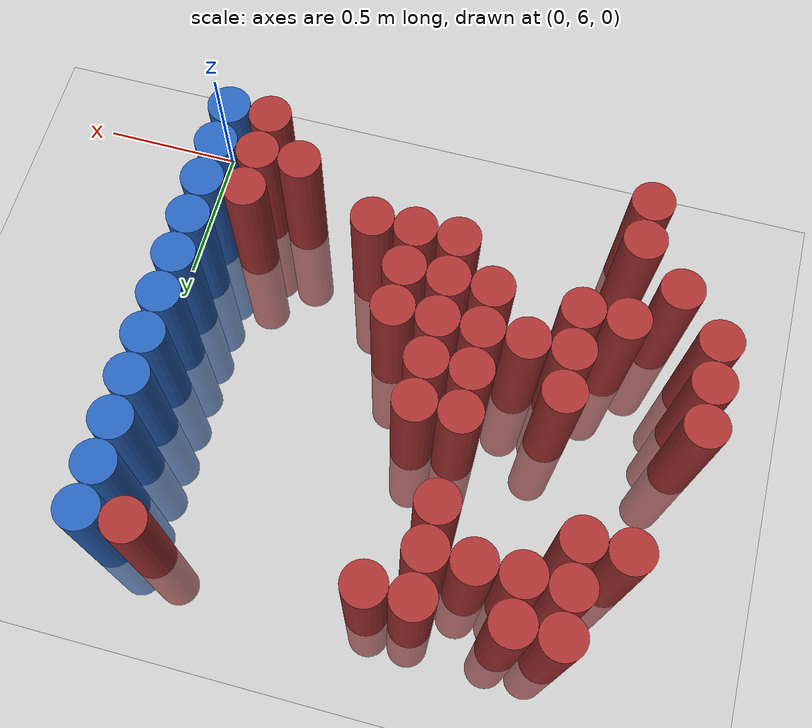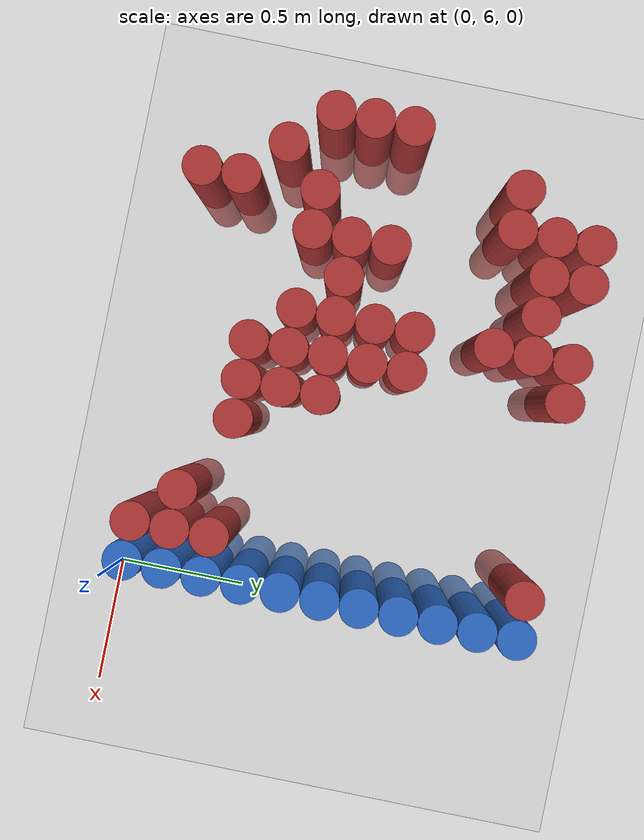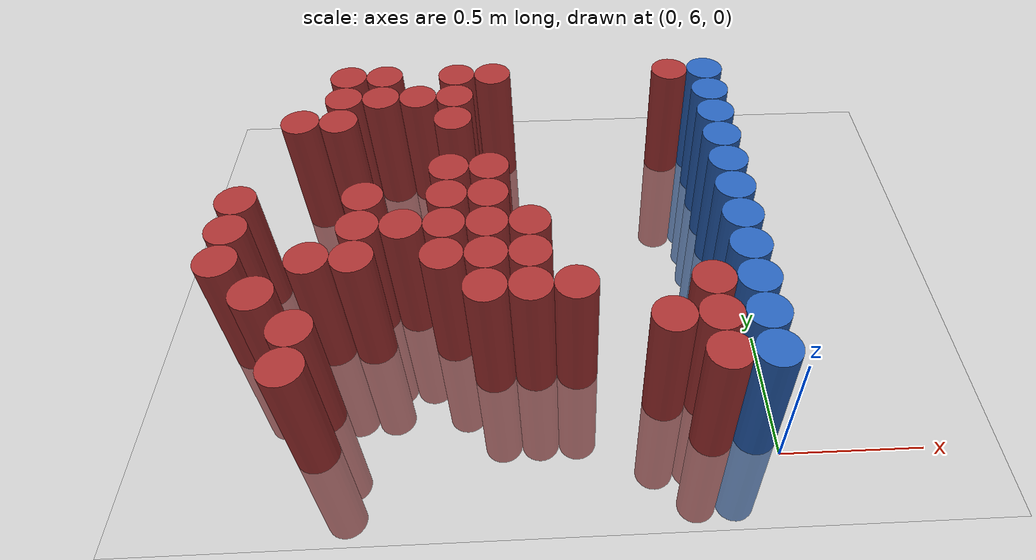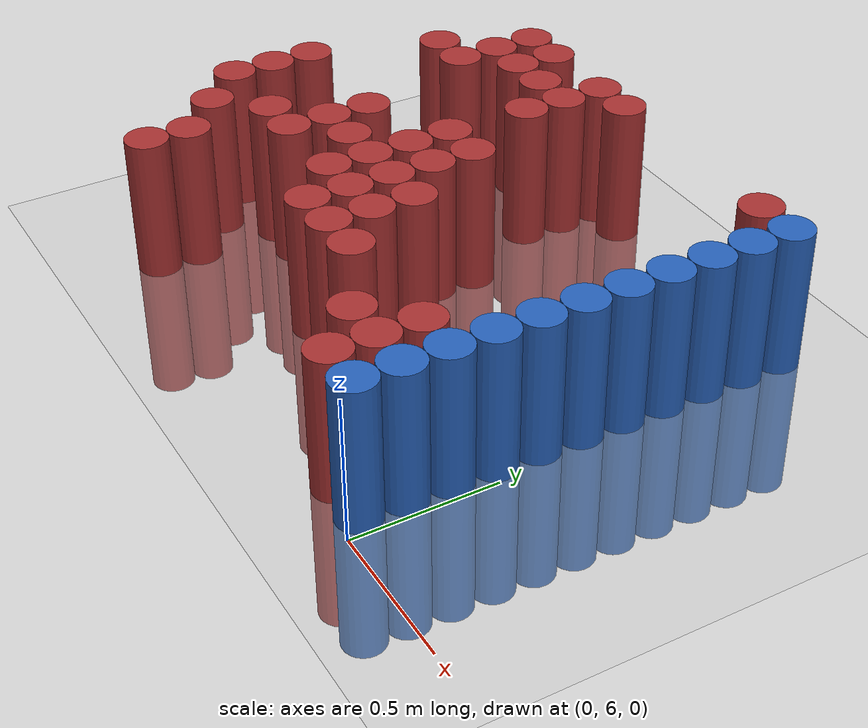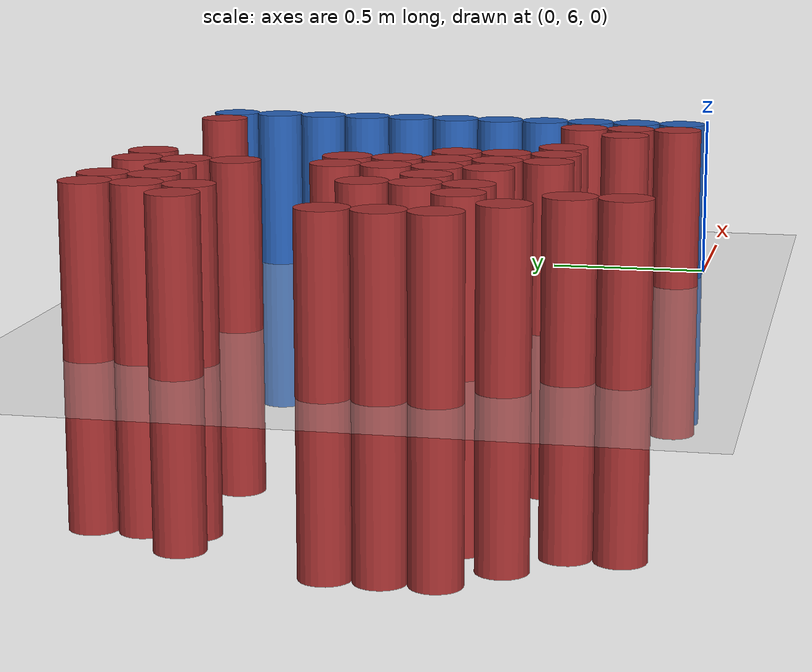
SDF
<sdf version="1.6">
 <world name="default">
  <model name="ground_plane">
   <static>1</static>
   <link name="link">
    <collision name="collision">
     <geometry><plane><normal>0 0 1</normal><size>100 100</size></plane></geometry>
     <surface><friction><ode><mu>100</mu><mu2>50</mu2></ode></friction></surface>
    </collision>
    <visual name="visual">
     <cast_shadows>0</cast_shadows>
     <geometry><plane><normal>0 0 1</normal><size>100 100</size></plane></geometry>
     <material>
      <script><uri>file://media/materials/scripts/gazebo.material</uri><name>Gazebo/Grey</name></script>
     </material>
    </visual>
   </link>
  </model>
  <model name="unit_cylinder_220">
   <static>1</static>
   <pose>-1.875000 6.525000 0.000000 0.000000 0.000000 0.000000</pose>
   <link name="link">
    <inertial>
     <mass>1</mass>
     <inertia><ixx>0.145833</ixx><ixy>0</ixy><ixz>0</ixz><iyy>0.145833</iyy><iyz>0</iyz><izz>0.125</izz></inertia>
    </inertial>
    <collision name="collision">
     <geometry><cylinder><radius>0.075000</radius><length>1</length></cylinder></geometry>
    </collision>
    <visual name="visual">
     <geometry><cylinder><radius>0.075000</radius><length>1</length></cylinder></geometry>
     <material>
      <ambient>0.648000 0.192000 0.192000 1</ambient>
      <diffuse>0.648000 0.192000 0.192000 1</diffuse>
     </material>
     <material>
      <script><name>Gazebo/Grey</name><uri>file://media/materials/scripts/gazebo.material</uri></script>
     </material>
    </visual>
   </link>
  </model>
  <model name="unit_cylinder_221">
   <static>1</static>
   <pose>-1.875000 6.675000 0.000000 0.000000 0.000000 0.000000</pose>
   <link name="link">
    <inertial>
     <mass>1</mass>
     <inertia><ixx>0.145833</ixx><ixy>0</ixy><ixz>0</ixz><iyy>0.145833</iyy><iyz>0</iyz><izz>0.125</izz></inertia>
    </inertial>
    <collision name="collision">
     <geometry><cylinder><radius>0.075000</radius><length>1</length></cylinder></geometry>
    </collision>
    <visual name="visual">
     <geometry><cylinder><radius>0.075000</radius><length>1</length></cylinder></geometry>
     <material>
      <ambient>0.648000 0.192000 0.192000 1</ambient>
      <diffuse>0.648000 0.192000 0.192000 1</diffuse>
     </material>
     <material>
      <script><name>Gazebo/Grey</name><uri>file://media/materials/scripts/gazebo.material</uri></script>
     </material>
    </visual>
   </link>
  </model>
  <model name="unit_cylinder_222">
   <static>1</static>
   <pose>-1.875000 6.825000 0.000000 0.000000 0.000000 0.000000</pose>
   <link name="link">
    <inertial>
     <mass>1</mass>
     <inertia><ixx>0.145833</ixx><ixy>0</ixy><ixz>0</ixz><iyy>0.145833</iyy><iyz>0</iyz><izz>0.125</izz></inertia>
    </inertial>
    <collision name="collision">
     <geometry><cylinder><radius>0.075000</radius><length>1</length></cylinder></geometry>
    </collision>
    <visual name="visual">
     <geometry><cylinder><radius>0.075000</radius><length>1</length></cylinder></geometry>
     <material>
      <ambient>0.648000 0.192000 0.192000 1</ambient>
      <diffuse>0.648000 0.192000 0.192000 1</diffuse>
     </material>
     <material>
      <script><name>Gazebo/Grey</name><uri>file://media/materials/scripts/gazebo.material</uri></script>
     </material>
    </visual>
   </link>
  </model>
  <model name="unit_cylinder_228">
   <static>1</static>
   <pose>-1.725000 6.375000 0.000000 0.000000 0.000000 0.000000</pose>
   <link name="link">
    <inertial>
     <mass>1</mass>
     <inertia><ixx>0.145833</ixx><ixy>0</ixy><ixz>0</ixz><iyy>0.145833</iyy><iyz>0</iyz><izz>0.125</izz></inertia>
    </inertial>
    <collision name="collision">
     <geometry><cylinder><radius>0.075000</radius><length>1</length></cylinder></geometry>
    </collision>
    <visual name="visual">
     <geometry><cylinder><radius>0.075000</radius><length>1</length></cylinder></geometry>
     <material>
      <ambient>0.648000 0.192000 0.192000 1</ambient>
      <diffuse>0.648000 0.192000 0.192000 1</diffuse>
     </material>
     <material>
      <script><name>Gazebo/Grey</name><uri>file://media/materials/scripts/gazebo.material</uri></script>
     </material>
    </visual>
   </link>
  </model>
  <model name="unit_cylinder_229">
   <static>1</static>
   <pose>-1.725000 7.275000 0.000000 0.000000 0.000000 0.000000</pose>
   <link name="link">
    <inertial>
     <mass>1</mass>
     <inertia><ixx>0.145833</ixx><ixy>0</ixy><ixz>0</ixz><iyy>0.145833</iyy><iyz>0</iyz><izz>0.125</izz></inertia>
    </inertial>
    <collision name="collision">
     <geometry><cylinder><radius>0.075000</radius><length>1</length></cylinder></geometry>
    </collision>
    <visual name="visual">
     <geometry><cylinder><radius>0.075000</radius><length>1</length></cylinder></geometry>
     <material>
      <ambient>0.648000 0.192000 0.192000 1</ambient>
      <diffuse>0.648000 0.192000 0.192000 1</diffuse>
     </material>
     <material>
      <script><name>Gazebo/Grey</name><uri>file://media/materials/scripts/gazebo.material</uri></script>
     </material>
    </visual>
   </link>
  </model>
  <model name="unit_cylinder_234">
   <static>1</static>
   <pose>-1.575000 6.075000 0.000000 0.000000 0.000000 0.000000</pose>
   <link name="link">
    <inertial>
     <mass>1</mass>
     <inertia><ixx>0.145833</ixx><ixy>0</ixy><ixz>0</ixz><iyy>0.145833</iyy><iyz>0</iyz><izz>0.125</izz></inertia>
    </inertial>
    <collision name="collision">
     <geometry><cylinder><radius>0.075000</radius><length>1</length></cylinder></geometry>
    </collision>
    <visual name="visual">
     <geometry><cylinder><radius>0.075000</radius><length>1</length></cylinder></geometry>
     <material>
      <ambient>0.648000 0.192000 0.192000 1</ambient>
      <diffuse>0.648000 0.192000 0.192000 1</diffuse>
     </material>
     <material>
      <script><name>Gazebo/Grey</name><uri>file://media/materials/scripts/gazebo.material</uri></script>
     </material>
    </visual>
   </link>
  </model>
  <model name="unit_cylinder_235">
   <static>1</static>
   <pose>-1.575000 6.225000 0.000000 0.000000 0.000000 0.000000</pose>
   <link name="link">
    <inertial>
     <mass>1</mass>
     <inertia><ixx>0.145833</ixx><ixy>0</ixy><ixz>0</ixz><iyy>0.145833</iyy><iyz>0</iyz><izz>0.125</izz></inertia>
    </inertial>
    <collision name="collision">
     <geometry><cylinder><radius>0.075000</radius><length>1</length></cylinder></geometry>
    </collision>
    <visual name="visual">
     <geometry><cylinder><radius>0.075000</radius><length>1</length></cylinder></geometry>
     <material>
      <ambient>0.648000 0.192000 0.192000 1</ambient>
      <diffuse>0.648000 0.192000 0.192000 1</diffuse>
     </material>
     <material>
      <script><name>Gazebo/Grey</name><uri>file://media/materials/scripts/gazebo.material</uri></script>
     </material>
    </visual>
   </link>
  </model>
  <model name="unit_cylinder_236">
   <static>1</static>
   <pose>-1.575000 6.525000 0.000000 0.000000 0.000000 0.000000</pose>
   <link name="link">
    <inertial>
     <mass>1</mass>
     <inertia><ixx>0.145833</ixx><ixy>0</ixy><ixz>0</ixz><iyy>0.145833</iyy><iyz>0</iyz><izz>0.125</izz></inertia>
    </inertial>
    <collision name="collision">
     <geometry><cylinder><radius>0.075000</radius><length>1</length></cylinder></geometry>
    </collision>
    <visual name="visual">
     <geometry><cylinder><radius>0.075000</radius><length>1</length></cylinder></geometry>
     <material>
      <ambient>0.648000 0.192000 0.192000 1</ambient>
      <diffuse>0.648000 0.192000 0.192000 1</diffuse>
     </material>
     <material>
      <script><name>Gazebo/Grey</name><uri>file://media/materials/scripts/gazebo.material</uri></script>
     </material>
    </visual>
   </link>
  </model>
  <model name="unit_cylinder_237">
   <static>1</static>
   <pose>-1.575000 7.275000 0.000000 0.000000 0.000000 0.000000</pose>
   <link name="link">
    <inertial>
     <mass>1</mass>
     <inertia><ixx>0.145833</ixx><ixy>0</ixy><ixz>0</ixz><iyy>0.145833</iyy><iyz>0</iyz><izz>0.125</izz></inertia>
    </inertial>
    <collision name="collision">
     <geometry><cylinder><radius>0.075000</radius><length>1</length></cylinder></geometry>
    </collision>
    <visual name="visual">
     <geometry><cylinder><radius>0.075000</radius><length>1</length></cylinder></geometry>
     <material>
      <ambient>0.648000 0.192000 0.192000 1</ambient>
      <diffuse>0.648000 0.192000 0.192000 1</diffuse>
     </material>
     <material>
      <script><name>Gazebo/Grey</name><uri>file://media/materials/scripts/gazebo.material</uri></script>
     </material>
    </visual>
   </link>
  </model>
  <model name="unit_cylinder_238">
   <static>1</static>
   <pose>-1.575000 7.425000 0.000000 0.000000 0.000000 0.000000</pose>
   <link name="link">
    <inertial>
     <mass>1</mass>
     <inertia><ixx>0.145833</ixx><ixy>0</ixy><ixz>0</ixz><iyy>0.145833</iyy><iyz>0</iyz><izz>0.125</izz></inertia>
    </inertial>
    <collision name="collision">
     <geometry><cylinder><radius>0.075000</radius><length>1</length></cylinder></geometry>
    </collision>
    <visual name="visual">
     <geometry><cylinder><radius>0.075000</radius><length>1</length></cylinder></geometry>
     <material>
      <ambient>0.648000 0.192000 0.192000 1</ambient>
      <diffuse>0.648000 0.192000 0.192000 1</diffuse>
     </material>
     <material>
      <script><name>Gazebo/Grey</name><uri>file://media/materials/scripts/gazebo.material</uri></script>
     </material>
    </visual>
   </link>
  </model>
  <model name="unit_cylinder_239">
   <static>1</static>
   <pose>-1.575000 7.575000 0.000000 0.000000 0.000000 0.000000</pose>
   <link name="link">
    <inertial>
     <mass>1</mass>
     <inertia><ixx>0.145833</ixx><ixy>0</ixy><ixz>0</ixz><iyy>0.145833</iyy><iyz>0</iyz><izz>0.125</izz></inertia>
    </inertial>
    <collision name="collision">
     <geometry><cylinder><radius>0.075000</radius><length>1</length></cylinder></geometry>
    </collision>
    <visual name="visual">
     <geometry><cylinder><radius>0.075000</radius><length>1</length></cylinder></geometry>
     <material>
      <ambient>0.648000 0.192000 0.192000 1</ambient>
      <diffuse>0.648000 0.192000 0.192000 1</diffuse>
     </material>
     <material>
      <script><name>Gazebo/Grey</name><uri>file://media/materials/scripts/gazebo.material</uri></script>
     </material>
    </visual>
   </link>
  </model>
  <model name="unit_cylinder_246">
   <static>1</static>
   <pose>-1.425000 6.525000 0.000000 0.000000 0.000000 0.000000</pose>
   <link name="link">
    <inertial>
     <mass>1</mass>
     <inertia><ixx>0.145833</ixx><ixy>0</ixy><ixz>0</ixz><iyy>0.145833</iyy><iyz>0</iyz><izz>0.125</izz></inertia>
    </inertial>
    <collision name="collision">
     <geometry><cylinder><radius>0.075000</radius><length>1</length></cylinder></geometry>
    </collision>
    <visual name="visual">
     <geometry><cylinder><radius>0.075000</radius><length>1</length></cylinder></geometry>
     <material>
      <ambient>0.648000 0.192000 0.192000 1</ambient>
      <diffuse>0.648000 0.192000 0.192000 1</diffuse>
     </material>
     <material>
      <script><name>Gazebo/Grey</name><uri>file://media/materials/scripts/gazebo.material</uri></script>
     </material>
    </visual>
   </link>
  </model>
  <model name="unit_cylinder_247">
   <static>1</static>
   <pose>-1.425000 6.675000 0.000000 0.000000 0.000000 0.000000</pose>
   <link name="link">
    <inertial>
     <mass>1</mass>
     <inertia><ixx>0.145833</ixx><ixy>0</ixy><ixz>0</ixz><iyy>0.145833</iyy><iyz>0</iyz><izz>0.125</izz></inertia>
    </inertial>
    <collision name="collision">
     <geometry><cylinder><radius>0.075000</radius><length>1</length></cylinder></geometry>
    </collision>
    <visual name="visual">
     <geometry><cylinder><radius>0.075000</radius><length>1</length></cylinder></geometry>
     <material>
      <ambient>0.648000 0.192000 0.192000 1</ambient>
      <diffuse>0.648000 0.192000 0.192000 1</diffuse>
     </material>
     <material>
      <script><name>Gazebo/Grey</name><uri>file://media/materials/scripts/gazebo.material</uri></script>
     </material>
    </visual>
   </link>
  </model>
  <model name="unit_cylinder_248">
   <static>1</static>
   <pose>-1.425000 6.825000 0.000000 0.000000 0.000000 0.000000</pose>
   <link name="link">
    <inertial>
     <mass>1</mass>
     <inertia><ixx>0.145833</ixx><ixy>0</ixy><ixz>0</ixz><iyy>0.145833</iyy><iyz>0</iyz><izz>0.125</izz></inertia>
    </inertial>
    <collision name="collision">
     <geometry><cylinder><radius>0.075000</radius><length>1</length></cylinder></geometry>
    </collision>
    <visual name="visual">
     <geometry><cylinder><radius>0.075000</radius><length>1</length></cylinder></geometry>
     <material>
      <ambient>0.648000 0.192000 0.192000 1</ambient>
      <diffuse>0.648000 0.192000 0.192000 1</diffuse>
     </material>
     <material>
      <script><name>Gazebo/Grey</name><uri>file://media/materials/scripts/gazebo.material</uri></script>
     </material>
    </visual>
   </link>
  </model>
  <model name="unit_cylinder_249">
   <static>1</static>
   <pose>-1.425000 7.425000 0.000000 0.000000 0.000000 0.000000</pose>
   <link name="link">
    <inertial>
     <mass>1</mass>
     <inertia><ixx>0.145833</ixx><ixy>0</ixy><ixz>0</ixz><iyy>0.145833</iyy><iyz>0</iyz><izz>0.125</izz></inertia>
    </inertial>
    <collision name="collision">
     <geometry><cylinder><radius>0.075000</radius><length>1</length></cylinder></geometry>
    </collision>
    <visual name="visual">
     <geometry><cylinder><radius>0.075000</radius><length>1</length></cylinder></geometry>
     <material>
      <ambient>0.648000 0.192000 0.192000 1</ambient>
      <diffuse>0.648000 0.192000 0.192000 1</diffuse>
     </material>
     <material>
      <script><name>Gazebo/Grey</name><uri>file://media/materials/scripts/gazebo.material</uri></script>
     </material>
    </visual>
   </link>
  </model>
  <model name="unit_cylinder_250">
   <static>1</static>
   <pose>-1.425000 7.575000 0.000000 0.000000 0.000000 0.000000</pose>
   <link name="link">
    <inertial>
     <mass>1</mass>
     <inertia><ixx>0.145833</ixx><ixy>0</ixy><ixz>0</ixz><iyy>0.145833</iyy><iyz>0</iyz><izz>0.125</izz></inertia>
    </inertial>
    <collision name="collision">
     <geometry><cylinder><radius>0.075000</radius><length>1</length></cylinder></geometry>
    </collision>
    <visual name="visual">
     <geometry><cylinder><radius>0.075000</radius><length>1</length></cylinder></geometry>
     <material>
      <ambient>0.648000 0.192000 0.192000 1</ambient>
      <diffuse>0.648000 0.192000 0.192000 1</diffuse>
     </material>
     <material>
      <script><name>Gazebo/Grey</name><uri>file://media/materials/scripts/gazebo.material</uri></script>
     </material>
    </visual>
   </link>
  </model>
  <model name="unit_cylinder_259">
   <static>1</static>
   <pose>-1.275000 6.675000 0.000000 0.000000 0.000000 0.000000</pose>
   <link name="link">
    <inertial>
     <mass>1</mass>
     <inertia><ixx>0.145833</ixx><ixy>0</ixy><ixz>0</ixz><iyy>0.145833</iyy><iyz>0</iyz><izz>0.125</izz></inertia>
    </inertial>
    <collision name="collision">
     <geometry><cylinder><radius>0.075000</radius><length>1</length></cylinder></geometry>
    </collision>
    <visual name="visual">
     <geometry><cylinder><radius>0.075000</radius><length>1</length></cylinder></geometry>
     <material>
      <ambient>0.648000 0.192000 0.192000 1</ambient>
      <diffuse>0.648000 0.192000 0.192000 1</diffuse>
     </material>
     <material>
      <script><name>Gazebo/Grey</name><uri>file://media/materials/scripts/gazebo.material</uri></script>
     </material>
    </visual>
   </link>
  </model>
  <model name="unit_cylinder_260">
   <static>1</static>
   <pose>-1.275000 7.425000 0.000000 0.000000 0.000000 0.000000</pose>
   <link name="link">
    <inertial>
     <mass>1</mass>
     <inertia><ixx>0.145833</ixx><ixy>0</ixy><ixz>0</ixz><iyy>0.145833</iyy><iyz>0</iyz><izz>0.125</izz></inertia>
    </inertial>
    <collision name="collision">
     <geometry><cylinder><radius>0.075000</radius><length>1</length></cylinder></geometry>
    </collision>
    <visual name="visual">
     <geometry><cylinder><radius>0.075000</radius><length>1</length></cylinder></geometry>
     <material>
      <ambient>0.648000 0.192000 0.192000 1</ambient>
      <diffuse>0.648000 0.192000 0.192000 1</diffuse>
     </material>
     <material>
      <script><name>Gazebo/Grey</name><uri>file://media/materials/scripts/gazebo.material</uri></script>
     </material>
    </visual>
   </link>
  </model>
  <model name="unit_cylinder_269">
   <static>1</static>
   <pose>-1.125000 6.525000 0.000000 0.000000 0.000000 0.000000</pose>
   <link name="link">
    <inertial>
     <mass>1</mass>
     <inertia><ixx>0.145833</ixx><ixy>0</ixy><ixz>0</ixz><iyy>0.145833</iyy><iyz>0</iyz><izz>0.125</izz></inertia>
    </inertial>
    <collision name="collision">
     <geometry><cylinder><radius>0.075000</radius><length>1</length></cylinder></geometry>
    </collision>
    <visual name="visual">
     <geometry><cylinder><radius>0.075000</radius><length>1</length></cylinder></geometry>
     <material>
      <ambient>0.648000 0.192000 0.192000 1</ambient>
      <diffuse>0.648000 0.192000 0.192000 1</diffuse>
     </material>
     <material>
      <script><name>Gazebo/Grey</name><uri>file://media/materials/scripts/gazebo.material</uri></script>
     </material>
    </visual>
   </link>
  </model>
  <model name="unit_cylinder_270">
   <static>1</static>
   <pose>-1.125000 6.675000 0.000000 0.000000 0.000000 0.000000</pose>
   <link name="link">
    <inertial>
     <mass>1</mass>
     <inertia><ixx>0.145833</ixx><ixy>0</ixy><ixz>0</ixz><iyy>0.145833</iyy><iyz>0</iyz><izz>0.125</izz></inertia>
    </inertial>
    <collision name="collision">
     <geometry><cylinder><radius>0.075000</radius><length>1</length></cylinder></geometry>
    </collision>
    <visual name="visual">
     <geometry><cylinder><radius>0.075000</radius><length>1</length></cylinder></geometry>
     <material>
      <ambient>0.648000 0.192000 0.192000 1</ambient>
      <diffuse>0.648000 0.192000 0.192000 1</diffuse>
     </material>
     <material>
      <script><name>Gazebo/Grey</name><uri>file://media/materials/scripts/gazebo.material</uri></script>
     </material>
    </visual>
   </link>
  </model>
  <model name="unit_cylinder_271">
   <static>1</static>
   <pose>-1.125000 6.825000 0.000000 0.000000 0.000000 0.000000</pose>
   <link name="link">
    <inertial>
     <mass>1</mass>
     <inertia><ixx>0.145833</ixx><ixy>0</ixy><ixz>0</ixz><iyy>0.145833</iyy><iyz>0</iyz><izz>0.125</izz></inertia>
    </inertial>
    <collision name="collision">
     <geometry><cylinder><radius>0.075000</radius><length>1</length></cylinder></geometry>
    </collision>
    <visual name="visual">
     <geometry><cylinder><radius>0.075000</radius><length>1</length></cylinder></geometry>
     <material>
      <ambient>0.648000 0.192000 0.192000 1</ambient>
      <diffuse>0.648000 0.192000 0.192000 1</diffuse>
     </material>
     <material>
      <script><name>Gazebo/Grey</name><uri>file://media/materials/scripts/gazebo.material</uri></script>
     </material>
    </visual>
   </link>
  </model>
  <model name="unit_cylinder_272">
   <static>1</static>
   <pose>-1.125000 6.975000 0.000000 0.000000 0.000000 0.000000</pose>
   <link name="link">
    <inertial>
     <mass>1</mass>
     <inertia><ixx>0.145833</ixx><ixy>0</ixy><ixz>0</ixz><iyy>0.145833</iyy><iyz>0</iyz><izz>0.125</izz></inertia>
    </inertial>
    <collision name="collision">
     <geometry><cylinder><radius>0.075000</radius><length>1</length></cylinder></geometry>
    </collision>
    <visual name="visual">
     <geometry><cylinder><radius>0.075000</radius><length>1</length></cylinder></geometry>
     <material>
      <ambient>0.648000 0.192000 0.192000 1</ambient>
      <diffuse>0.648000 0.192000 0.192000 1</diffuse>
     </material>
     <material>
      <script><name>Gazebo/Grey</name><uri>file://media/materials/scripts/gazebo.material</uri></script>
     </material>
    </visual>
   </link>
  </model>
  <model name="unit_cylinder_273">
   <static>1</static>
   <pose>-1.125000 7.275000 0.000000 0.000000 0.000000 0.000000</pose>
   <link name="link">
    <inertial>
     <mass>1</mass>
     <inertia><ixx>0.145833</ixx><ixy>0</ixy><ixz>0</ixz><iyy>0.145833</iyy><iyz>0</iyz><izz>0.125</izz></inertia>
    </inertial>
    <collision name="collision">
     <geometry><cylinder><radius>0.075000</radius><length>1</length></cylinder></geometry>
    </collision>
    <visual name="visual">
     <geometry><cylinder><radius>0.075000</radius><length>1</length></cylinder></geometry>
     <material>
      <ambient>0.648000 0.192000 0.192000 1</ambient>
      <diffuse>0.648000 0.192000 0.192000 1</diffuse>
     </material>
     <material>
      <script><name>Gazebo/Grey</name><uri>file://media/materials/scripts/gazebo.material</uri></script>
     </material>
    </visual>
   </link>
  </model>
  <model name="unit_cylinder_274">
   <static>1</static>
   <pose>-1.125000 7.425000 0.000000 0.000000 0.000000 0.000000</pose>
   <link name="link">
    <inertial>
     <mass>1</mass>
     <inertia><ixx>0.145833</ixx><ixy>0</ixy><ixz>0</ixz><iyy>0.145833</iyy><iyz>0</iyz><izz>0.125</izz></inertia>
    </inertial>
    <collision name="collision">
     <geometry><cylinder><radius>0.075000</radius><length>1</length></cylinder></geometry>
    </collision>
    <visual name="visual">
     <geometry><cylinder><radius>0.075000</radius><length>1</length></cylinder></geometry>
     <material>
      <ambient>0.648000 0.192000 0.192000 1</ambient>
      <diffuse>0.648000 0.192000 0.192000 1</diffuse>
     </material>
     <material>
      <script><name>Gazebo/Grey</name><uri>file://media/materials/scripts/gazebo.material</uri></script>
     </material>
    </visual>
   </link>
  </model>
  <model name="unit_cylinder_275">
   <static>1</static>
   <pose>-1.125000 7.575000 0.000000 0.000000 0.000000 0.000000</pose>
   <link name="link">
    <inertial>
     <mass>1</mass>
     <inertia><ixx>0.145833</ixx><ixy>0</ixy><ixz>0</ixz><iyy>0.145833</iyy><iyz>0</iyz><izz>0.125</izz></inertia>
    </inertial>
    <collision name="collision">
     <geometry><cylinder><radius>0.075000</radius><length>1</length></cylinder></geometry>
    </collision>
    <visual name="visual">
     <geometry><cylinder><radius>0.075000</radius><length>1</length></cylinder></geometry>
     <material>
      <ambient>0.648000 0.192000 0.192000 1</ambient>
      <diffuse>0.648000 0.192000 0.192000 1</diffuse>
     </material>
     <material>
      <script><name>Gazebo/Grey</name><uri>file://media/materials/scripts/gazebo.material</uri></script>
     </material>
    </visual>
   </link>
  </model>
  <model name="unit_cylinder_281">
   <static>1</static>
   <pose>-0.975000 6.375000 0.000000 0.000000 0.000000 0.000000</pose>
   <link name="link">
    <inertial>
     <mass>1</mass>
     <inertia><ixx>0.145833</ixx><ixy>0</ixy><ixz>0</ixz><iyy>0.145833</iyy><iyz>0</iyz><izz>0.125</izz></inertia>
    </inertial>
    <collision name="collision">
     <geometry><cylinder><radius>0.075000</radius><length>1</length></cylinder></geometry>
    </collision>
    <visual name="visual">
     <geometry><cylinder><radius>0.075000</radius><length>1</length></cylinder></geometry>
     <material>
      <ambient>0.648000 0.192000 0.192000 1</ambient>
      <diffuse>0.648000 0.192000 0.192000 1</diffuse>
     </material>
     <material>
      <script><name>Gazebo/Grey</name><uri>file://media/materials/scripts/gazebo.material</uri></script>
     </material>
    </visual>
   </link>
  </model>
  <model name="unit_cylinder_282">
   <static>1</static>
   <pose>-0.975000 6.525000 0.000000 0.000000 0.000000 0.000000</pose>
   <link name="link">
    <inertial>
     <mass>1</mass>
     <inertia><ixx>0.145833</ixx><ixy>0</ixy><ixz>0</ixz><iyy>0.145833</iyy><iyz>0</iyz><izz>0.125</izz></inertia>
    </inertial>
    <collision name="collision">
     <geometry><cylinder><radius>0.075000</radius><length>1</length></cylinder></geometry>
    </collision>
    <visual name="visual">
     <geometry><cylinder><radius>0.075000</radius><length>1</length></cylinder></geometry>
     <material>
      <ambient>0.648000 0.192000 0.192000 1</ambient>
      <diffuse>0.648000 0.192000 0.192000 1</diffuse>
     </material>
     <material>
      <script><name>Gazebo/Grey</name><uri>file://media/materials/scripts/gazebo.material</uri></script>
     </material>
    </visual>
   </link>
  </model>
  <model name="unit_cylinder_283">
   <static>1</static>
   <pose>-0.975000 6.675000 0.000000 0.000000 0.000000 0.000000</pose>
   <link name="link">
    <inertial>
     <mass>1</mass>
     <inertia><ixx>0.145833</ixx><ixy>0</ixy><ixz>0</ixz><iyy>0.145833</iyy><iyz>0</iyz><izz>0.125</izz></inertia>
    </inertial>
    <collision name="collision">
     <geometry><cylinder><radius>0.075000</radius><length>1</length></cylinder></geometry>
    </collision>
    <visual name="visual">
     <geometry><cylinder><radius>0.075000</radius><length>1</length></cylinder></geometry>
     <material>
      <ambient>0.648000 0.192000 0.192000 1</ambient>
      <diffuse>0.648000 0.192000 0.192000 1</diffuse>
     </material>
     <material>
      <script><name>Gazebo/Grey</name><uri>file://media/materials/scripts/gazebo.material</uri></script>
     </material>
    </visual>
   </link>
  </model>
  <model name="unit_cylinder_284">
   <static>1</static>
   <pose>-0.975000 6.825000 0.000000 0.000000 0.000000 0.000000</pose>
   <link name="link">
    <inertial>
     <mass>1</mass>
     <inertia><ixx>0.145833</ixx><ixy>0</ixy><ixz>0</ixz><iyy>0.145833</iyy><iyz>0</iyz><izz>0.125</izz></inertia>
    </inertial>
    <collision name="collision">
     <geometry><cylinder><radius>0.075000</radius><length>1</length></cylinder></geometry>
    </collision>
    <visual name="visual">
     <geometry><cylinder><radius>0.075000</radius><length>1</length></cylinder></geometry>
     <material>
      <ambient>0.648000 0.192000 0.192000 1</ambient>
      <diffuse>0.648000 0.192000 0.192000 1</diffuse>
     </material>
     <material>
      <script><name>Gazebo/Grey</name><uri>file://media/materials/scripts/gazebo.material</uri></script>
     </material>
    </visual>
   </link>
  </model>
  <model name="unit_cylinder_285">
   <static>1</static>
   <pose>-0.975000 6.975000 0.000000 0.000000 0.000000 0.000000</pose>
   <link name="link">
    <inertial>
     <mass>1</mass>
     <inertia><ixx>0.145833</ixx><ixy>0</ixy><ixz>0</ixz><iyy>0.145833</iyy><iyz>0</iyz><izz>0.125</izz></inertia>
    </inertial>
    <collision name="collision">
     <geometry><cylinder><radius>0.075000</radius><length>1</length></cylinder></geometry>
    </collision>
    <visual name="visual">
     <geometry><cylinder><radius>0.075000</radius><length>1</length></cylinder></geometry>
     <material>
      <ambient>0.648000 0.192000 0.192000 1</ambient>
      <diffuse>0.648000 0.192000 0.192000 1</diffuse>
     </material>
     <material>
      <script><name>Gazebo/Grey</name><uri>file://media/materials/scripts/gazebo.material</uri></script>
     </material>
    </visual>
   </link>
  </model>
  <model name="unit_cylinder_286">
   <static>1</static>
   <pose>-0.975000 7.575000 0.000000 0.000000 0.000000 0.000000</pose>
   <link name="link">
    <inertial>
     <mass>1</mass>
     <inertia><ixx>0.145833</ixx><ixy>0</ixy><ixz>0</ixz><iyy>0.145833</iyy><iyz>0</iyz><izz>0.125</izz></inertia>
    </inertial>
    <collision name="collision">
     <geometry><cylinder><radius>0.075000</radius><length>1</length></cylinder></geometry>
    </collision>
    <visual name="visual">
     <geometry><cylinder><radius>0.075000</radius><length>1</length></cylinder></geometry>
     <material>
      <ambient>0.648000 0.192000 0.192000 1</ambient>
      <diffuse>0.648000 0.192000 0.192000 1</diffuse>
     </material>
     <material>
      <script><name>Gazebo/Grey</name><uri>file://media/materials/scripts/gazebo.material</uri></script>
     </material>
    </visual>
   </link>
  </model>
  <model name="unit_cylinder_291">
   <static>1</static>
   <pose>-0.825000 6.375000 0.000000 0.000000 0.000000 0.000000</pose>
   <link name="link">
    <inertial>
     <mass>1</mass>
     <inertia><ixx>0.145833</ixx><ixy>0</ixy><ixz>0</ixz><iyy>0.145833</iyy><iyz>0</iyz><izz>0.125</izz></inertia>
    </inertial>
    <collision name="collision">
     <geometry><cylinder><radius>0.075000</radius><length>1</length></cylinder></geometry>
    </collision>
    <visual name="visual">
     <geometry><cylinder><radius>0.075000</radius><length>1</length></cylinder></geometry>
     <material>
      <ambient>0.648000 0.192000 0.192000 1</ambient>
      <diffuse>0.648000 0.192000 0.192000 1</diffuse>
     </material>
     <material>
      <script><name>Gazebo/Grey</name><uri>file://media/materials/scripts/gazebo.material</uri></script>
     </material>
    </visual>
   </link>
  </model>
  <model name="unit_cylinder_292">
   <static>1</static>
   <pose>-0.825000 6.525000 0.000000 0.000000 0.000000 0.000000</pose>
   <link name="link">
    <inertial>
     <mass>1</mass>
     <inertia><ixx>0.145833</ixx><ixy>0</ixy><ixz>0</ixz><iyy>0.145833</iyy><iyz>0</iyz><izz>0.125</izz></inertia>
    </inertial>
    <collision name="collision">
     <geometry><cylinder><radius>0.075000</radius><length>1</length></cylinder></geometry>
    </collision>
    <visual name="visual">
     <geometry><cylinder><radius>0.075000</radius><length>1</length></cylinder></geometry>
     <material>
      <ambient>0.648000 0.192000 0.192000 1</ambient>
      <diffuse>0.648000 0.192000 0.192000 1</diffuse>
     </material>
     <material>
      <script><name>Gazebo/Grey</name><uri>file://media/materials/scripts/gazebo.material</uri></script>
     </material>
    </visual>
   </link>
  </model>
  <model name="unit_cylinder_293">
   <static>1</static>
   <pose>-0.825000 6.675000 0.000000 0.000000 0.000000 0.000000</pose>
   <link name="link">
    <inertial>
     <mass>1</mass>
     <inertia><ixx>0.145833</ixx><ixy>0</ixy><ixz>0</ixz><iyy>0.145833</iyy><iyz>0</iyz><izz>0.125</izz></inertia>
    </inertial>
    <collision name="collision">
     <geometry><cylinder><radius>0.075000</radius><length>1</length></cylinder></geometry>
    </collision>
    <visual name="visual">
     <geometry><cylinder><radius>0.075000</radius><length>1</length></cylinder></geometry>
     <material>
      <ambient>0.648000 0.192000 0.192000 1</ambient>
      <diffuse>0.648000 0.192000 0.192000 1</diffuse>
     </material>
     <material>
      <script><name>Gazebo/Grey</name><uri>file://media/materials/scripts/gazebo.material</uri></script>
     </material>
    </visual>
   </link>
  </model>
  <model name="unit_cylinder_297">
   <static>1</static>
   <pose>-0.675000 6.375000 0.000000 0.000000 0.000000 0.000000</pose>
   <link name="link">
    <inertial>
     <mass>1</mass>
     <inertia><ixx>0.145833</ixx><ixy>0</ixy><ixz>0</ixz><iyy>0.145833</iyy><iyz>0</iyz><izz>0.125</izz></inertia>
    </inertial>
    <collision name="collision">
     <geometry><cylinder><radius>0.075000</radius><length>1</length></cylinder></geometry>
    </collision>
    <visual name="visual">
     <geometry><cylinder><radius>0.075000</radius><length>1</length></cylinder></geometry>
     <material>
      <ambient>0.648000 0.192000 0.192000 1</ambient>
      <diffuse>0.648000 0.192000 0.192000 1</diffuse>
     </material>
     <material>
      <script><name>Gazebo/Grey</name><uri>file://media/materials/scripts/gazebo.material</uri></script>
     </material>
    </visual>
   </link>
  </model>
  <model name="unit_cylinder_308">
   <static>1</static>
   <pose>-0.375000 6.225000 0.000000 0.000000 0.000000 0.000000</pose>
   <link name="link">
    <inertial>
     <mass>1</mass>
     <inertia><ixx>0.145833</ixx><ixy>0</ixy><ixz>0</ixz><iyy>0.145833</iyy><iyz>0</iyz><izz>0.125</izz></inertia>
    </inertial>
    <collision name="collision">
     <geometry><cylinder><radius>0.075000</radius><length>1</length></cylinder></geometry>
    </collision>
    <visual name="visual">
     <geometry><cylinder><radius>0.075000</radius><length>1</length></cylinder></geometry>
     <material>
      <ambient>0.648000 0.192000 0.192000 1</ambient>
      <diffuse>0.648000 0.192000 0.192000 1</diffuse>
     </material>
     <material>
      <script><name>Gazebo/Grey</name><uri>file://media/materials/scripts/gazebo.material</uri></script>
     </material>
    </visual>
   </link>
  </model>
  <model name="unit_cylinder_317">
   <static>1</static>
   <pose>-0.225000 6.075000 0.000000 0.000000 0.000000 0.000000</pose>
   <link name="link">
    <inertial>
     <mass>1</mass>
     <inertia><ixx>0.145833</ixx><ixy>0</ixy><ixz>0</ixz><iyy>0.145833</iyy><iyz>0</iyz><izz>0.125</izz></inertia>
    </inertial>
    <collision name="collision">
     <geometry><cylinder><radius>0.075000</radius><length>1</length></cylinder></geometry>
    </collision>
    <visual name="visual">
     <geometry><cylinder><radius>0.075000</radius><length>1</length></cylinder></geometry>
     <material>
      <ambient>0.648000 0.192000 0.192000 1</ambient>
      <diffuse>0.648000 0.192000 0.192000 1</diffuse>
     </material>
     <material>
      <script><name>Gazebo/Grey</name><uri>file://media/materials/scripts/gazebo.material</uri></script>
     </material>
    </visual>
   </link>
  </model>
  <model name="unit_cylinder_318">
   <static>1</static>
   <pose>-0.225000 6.225000 0.000000 0.000000 0.000000 0.000000</pose>
   <link name="link">
    <inertial>
     <mass>1</mass>
     <inertia><ixx>0.145833</ixx><ixy>0</ixy><ixz>0</ixz><iyy>0.145833</iyy><iyz>0</iyz><izz>0.125</izz></inertia>
    </inertial>
    <collision name="collision">
     <geometry><cylinder><radius>0.075000</radius><length>1</length></cylinder></geometry>
    </collision>
    <visual name="visual">
     <geometry><cylinder><radius>0.075000</radius><length>1</length></cylinder></geometry>
     <material>
      <ambient>0.648000 0.192000 0.192000 1</ambient>
      <diffuse>0.648000 0.192000 0.192000 1</diffuse>
     </material>
     <material>
      <script><name>Gazebo/Grey</name><uri>file://media/materials/scripts/gazebo.material</uri></script>
     </material>
    </visual>
   </link>
  </model>
  <model name="unit_cylinder_319">
   <static>1</static>
   <pose>-0.225000 6.375000 0.000000 0.000000 0.000000 0.000000</pose>
   <link name="link">
    <inertial>
     <mass>1</mass>
     <inertia><ixx>0.145833</ixx><ixy>0</ixy><ixz>0</ixz><iyy>0.145833</iyy><iyz>0</iyz><izz>0.125</izz></inertia>
    </inertial>
    <collision name="collision">
     <geometry><cylinder><radius>0.075000</radius><length>1</length></cylinder></geometry>
    </collision>
    <visual name="visual">
     <geometry><cylinder><radius>0.075000</radius><length>1</length></cylinder></geometry>
     <material>
      <ambient>0.648000 0.192000 0.192000 1</ambient>
      <diffuse>0.648000 0.192000 0.192000 1</diffuse>
     </material>
     <material>
      <script><name>Gazebo/Grey</name><uri>file://media/materials/scripts/gazebo.material</uri></script>
     </material>
    </visual>
   </link>
  </model>
  <model name="unit_cylinder_320">
   <static>1</static>
   <pose>-0.225000 7.575000 0.000000 0.000000 0.000000 0.000000</pose>
   <link name="link">
    <inertial>
     <mass>1</mass>
     <inertia><ixx>0.145833</ixx><ixy>0</ixy><ixz>0</ixz><iyy>0.145833</iyy><iyz>0</iyz><izz>0.125</izz></inertia>
    </inertial>
    <collision name="collision">
     <geometry><cylinder><radius>0.075000</radius><length>1</length></cylinder></geometry>
    </collision>
    <visual name="visual">
     <geometry><cylinder><radius>0.075000</radius><length>1</length></cylinder></geometry>
     <material>
      <ambient>0.648000 0.192000 0.192000 1</ambient>
      <diffuse>0.648000 0.192000 0.192000 1</diffuse>
     </material>
     <material>
      <script><name>Gazebo/Grey</name><uri>file://media/materials/scripts/gazebo.material</uri></script>
     </material>
    </visual>
   </link>
  </model>
  <model name="unit_cylinder_331">
   <static>1</static>
   <pose>-0.075000 6.075000 0.000000 0.000000 0.000000 0.000000</pose>
   <link name="link">
    <inertial>
     <mass>1</mass>
     <inertia><ixx>0.145833</ixx><ixy>0</ixy><ixz>0</ixz><iyy>0.145833</iyy><iyz>0</iyz><izz>0.125</izz></inertia>
    </inertial>
    <collision name="collision">
     <geometry><cylinder><radius>0.075000</radius><length>1</length></cylinder></geometry>
    </collision>
    <visual name="visual">
     <geometry><cylinder><radius>0.075000</radius><length>1</length></cylinder></geometry>
     <material>
      <ambient>0.152000 0.379000 0.720000 1</ambient>
      <diffuse>0.152000 0.379000 0.720000 1</diffuse>
     </material>
     <material>
      <script><name>Gazebo/Grey</name><uri>file://media/materials/scripts/gazebo.material</uri></script>
     </material>
    </visual>
   </link>
  </model>
  <model name="unit_cylinder_332">
   <static>1</static>
   <pose>-0.075000 6.225000 0.000000 0.000000 0.000000 0.000000</pose>
   <link name="link">
    <inertial>
     <mass>1</mass>
     <inertia><ixx>0.145833</ixx><ixy>0</ixy><ixz>0</ixz><iyy>0.145833</iyy><iyz>0</iyz><izz>0.125</izz></inertia>
    </inertial>
    <collision name="collision">
     <geometry><cylinder><radius>0.075000</radius><length>1</length></cylinder></geometry>
    </collision>
    <visual name="visual">
     <geometry><cylinder><radius>0.075000</radius><length>1</length></cylinder></geometry>
     <material>
      <ambient>0.152000 0.379000 0.720000 1</ambient>
      <diffuse>0.152000 0.379000 0.720000 1</diffuse>
     </material>
     <material>
      <script><name>Gazebo/Grey</name><uri>file://media/materials/scripts/gazebo.material</uri></script>
     </material>
    </visual>
   </link>
  </model>
  <model name="unit_cylinder_333">
   <static>1</static>
   <pose>-0.075000 6.375000 0.000000 0.000000 0.000000 0.000000</pose>
   <link name="link">
    <inertial>
     <mass>1</mass>
     <inertia><ixx>0.145833</ixx><ixy>0</ixy><ixz>0</ixz><iyy>0.145833</iyy><iyz>0</iyz><izz>0.125</izz></inertia>
    </inertial>
    <collision name="collision">
     <geometry><cylinder><radius>0.075000</radius><length>1</length></cylinder></geometry>
    </collision>
    <visual name="visual">
     <geometry><cylinder><radius>0.075000</radius><length>1</length></cylinder></geometry>
     <material>
      <ambient>0.152000 0.379000 0.720000 1</ambient>
      <diffuse>0.152000 0.379000 0.720000 1</diffuse>
     </material>
     <material>
      <script><name>Gazebo/Grey</name><uri>file://media/materials/scripts/gazebo.material</uri></script>
     </material>
    </visual>
   </link>
  </model>
  <model name="unit_cylinder_334">
   <static>1</static>
   <pose>-0.075000 6.525000 0.000000 0.000000 0.000000 0.000000</pose>
   <link name="link">
    <inertial>
     <mass>1</mass>
     <inertia><ixx>0.145833</ixx><ixy>0</ixy><ixz>0</ixz><iyy>0.145833</iyy><iyz>0</iyz><izz>0.125</izz></inertia>
    </inertial>
    <collision name="collision">
     <geometry><cylinder><radius>0.075000</radius><length>1</length></cylinder></geometry>
    </collision>
    <visual name="visual">
     <geometry><cylinder><radius>0.075000</radius><length>1</length></cylinder></geometry>
     <material>
      <ambient>0.152000 0.379000 0.720000 1</ambient>
      <diffuse>0.152000 0.379000 0.720000 1</diffuse>
     </material>
     <material>
      <script><name>Gazebo/Grey</name><uri>file://media/materials/scripts/gazebo.material</uri></script>
     </material>
    </visual>
   </link>
  </model>
  <model name="unit_cylinder_335">
   <static>1</static>
   <pose>-0.075000 6.675000 0.000000 0.000000 0.000000 0.000000</pose>
   <link name="link">
    <inertial>
     <mass>1</mass>
     <inertia><ixx>0.145833</ixx><ixy>0</ixy><ixz>0</ixz><iyy>0.145833</iyy><iyz>0</iyz><izz>0.125</izz></inertia>
    </inertial>
    <collision name="collision">
     <geometry><cylinder><radius>0.075000</radius><length>1</length></cylinder></geometry>
    </collision>
    <visual name="visual">
     <geometry><cylinder><radius>0.075000</radius><length>1</length></cylinder></geometry>
     <material>
      <ambient>0.152000 0.379000 0.720000 1</ambient>
      <diffuse>0.152000 0.379000 0.720000 1</diffuse>
     </material>
     <material>
      <script><name>Gazebo/Grey</name><uri>file://media/materials/scripts/gazebo.material</uri></script>
     </material>
    </visual>
   </link>
  </model>
  <model name="unit_cylinder_336">
   <static>1</static>
   <pose>-0.075000 6.825000 0.000000 0.000000 0.000000 0.000000</pose>
   <link name="link">
    <inertial>
     <mass>1</mass>
     <inertia><ixx>0.145833</ixx><ixy>0</ixy><ixz>0</ixz><iyy>0.145833</iyy><iyz>0</iyz><izz>0.125</izz></inertia>
    </inertial>
    <collision name="collision">
     <geometry><cylinder><radius>0.075000</radius><length>1</length></cylinder></geometry>
    </collision>
    <visual name="visual">
     <geometry><cylinder><radius>0.075000</radius><length>1</length></cylinder></geometry>
     <material>
      <ambient>0.152000 0.379000 0.720000 1</ambient>
      <diffuse>0.152000 0.379000 0.720000 1</diffuse>
     </material>
     <material>
      <script><name>Gazebo/Grey</name><uri>file://media/materials/scripts/gazebo.material</uri></script>
     </material>
    </visual>
   </link>
  </model>
  <model name="unit_cylinder_337">
   <static>1</static>
   <pose>-0.075000 6.975000 0.000000 0.000000 0.000000 0.000000</pose>
   <link name="link">
    <inertial>
     <mass>1</mass>
     <inertia><ixx>0.145833</ixx><ixy>0</ixy><ixz>0</ixz><iyy>0.145833</iyy><iyz>0</iyz><izz>0.125</izz></inertia>
    </inertial>
    <collision name="collision">
     <geometry><cylinder><radius>0.075000</radius><length>1</length></cylinder></geometry>
    </collision>
    <visual name="visual">
     <geometry><cylinder><radius>0.075000</radius><length>1</length></cylinder></geometry>
     <material>
      <ambient>0.152000 0.379000 0.720000 1</ambient>
      <diffuse>0.152000 0.379000 0.720000 1</diffuse>
     </material>
     <material>
      <script><name>Gazebo/Grey</name><uri>file://media/materials/scripts/gazebo.material</uri></script>
     </material>
    </visual>
   </link>
  </model>
  <model name="unit_cylinder_338">
   <static>1</static>
   <pose>-0.075000 7.125000 0.000000 0.000000 0.000000 0.000000</pose>
   <link name="link">
    <inertial>
     <mass>1</mass>
     <inertia><ixx>0.145833</ixx><ixy>0</ixy><ixz>0</ixz><iyy>0.145833</iyy><iyz>0</iyz><izz>0.125</izz></inertia>
    </inertial>
    <collision name="collision">
     <geometry><cylinder><radius>0.075000</radius><length>1</length></cylinder></geometry>
    </collision>
    <visual name="visual">
     <geometry><cylinder><radius>0.075000</radius><length>1</length></cylinder></geometry>
     <material>
      <ambient>0.152000 0.379000 0.720000 1</ambient>
      <diffuse>0.152000 0.379000 0.720000 1</diffuse>
     </material>
     <material>
      <script><name>Gazebo/Grey</name><uri>file://media/materials/scripts/gazebo.material</uri></script>
     </material>
    </visual>
   </link>
  </model>
  <model name="unit_cylinder_339">
   <static>1</static>
   <pose>-0.075000 7.275000 0.000000 0.000000 0.000000 0.000000</pose>
   <link name="link">
    <inertial>
     <mass>1</mass>
     <inertia><ixx>0.145833</ixx><ixy>0</ixy><ixz>0</ixz><iyy>0.145833</iyy><iyz>0</iyz><izz>0.125</izz></inertia>
    </inertial>
    <collision name="collision">
     <geometry><cylinder><radius>0.075000</radius><length>1</length></cylinder></geometry>
    </collision>
    <visual name="visual">
     <geometry><cylinder><radius>0.075000</radius><length>1</length></cylinder></geometry>
     <material>
      <ambient>0.152000 0.379000 0.720000 1</ambient>
      <diffuse>0.152000 0.379000 0.720000 1</diffuse>
     </material>
     <material>
      <script><name>Gazebo/Grey</name><uri>file://media/materials/scripts/gazebo.material</uri></script>
     </material>
    </visual>
   </link>
  </model>
  <model name="unit_cylinder_340">
   <static>1</static>
   <pose>-0.075000 7.425000 0.000000 0.000000 0.000000 0.000000</pose>
   <link name="link">
    <inertial>
     <mass>1</mass>
     <inertia><ixx>0.145833</ixx><ixy>0</ixy><ixz>0</ixz><iyy>0.145833</iyy><iyz>0</iyz><izz>0.125</izz></inertia>
    </inertial>
    <collision name="collision">
     <geometry><cylinder><radius>0.075000</radius><length>1</length></cylinder></geometry>
    </collision>
    <visual name="visual">
     <geometry><cylinder><radius>0.075000</radius><length>1</length></cylinder></geometry>
     <material>
      <ambient>0.152000 0.379000 0.720000 1</ambient>
      <diffuse>0.152000 0.379000 0.720000 1</diffuse>
     </material>
     <material>
      <script><name>Gazebo/Grey</name><uri>file://media/materials/scripts/gazebo.material</uri></script>
     </material>
    </visual>
   </link>
  </model>
  <model name="unit_cylinder_341">
   <static>1</static>
   <pose>-0.075000 7.575000 0.000000 0.000000 0.000000 0.000000</pose>
   <link name="link">
    <inertial>
     <mass>1</mass>
     <inertia><ixx>0.145833</ixx><ixy>0</ixy><ixz>0</ixz><iyy>0.145833</iyy><iyz>0</iyz><izz>0.125</izz></inertia>
    </inertial>
    <collision name="collision">
     <geometry><cylinder><radius>0.075000</radius><length>1</length></cylinder></geometry>
    </collision>
    <visual name="visual">
     <geometry><cylinder><radius>0.075000</radius><length>1</length></cylinder></geometry>
     <material>
      <ambient>0.152000 0.379000 0.720000 1</ambient>
      <diffuse>0.152000 0.379000 0.720000 1</diffuse>
     </material>
     <material>
      <script><name>Gazebo/Grey</name><uri>file://media/materials/scripts/gazebo.material</uri></script>
     </material>
    </visual>
   </link>
  </model>
 </world>
</sdf>
